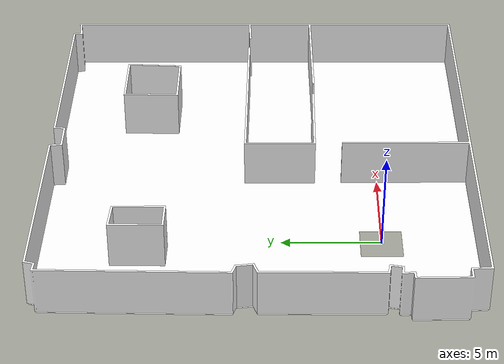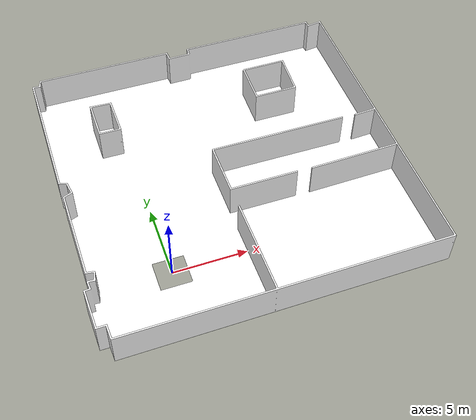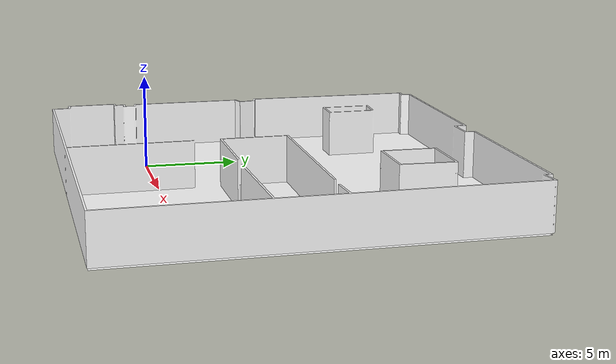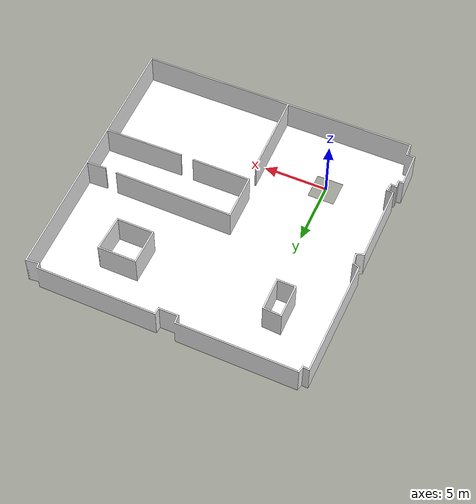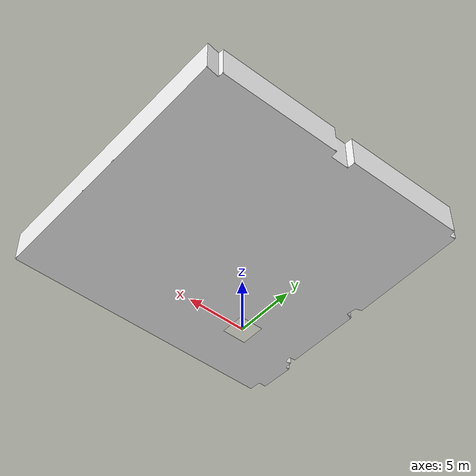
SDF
<?xml version='1.0' encoding='utf-8'?>
<sdf version="1.7">
  <model name="suntech_office_L2">
    <static>true</static>
    <link name="floor_1">
      <visual name="visual">
        <geometry>
          <mesh>
            <uri>model://suntech_office_L2/meshes/floor_1.obj</uri>
          </mesh>
        </geometry>
        <material>
          <diffuse>1.0 1.0 1.0</diffuse>
          <specular>0.1 0.1 0.1</specular>
          <pbr>
            <metal>
              <metalness>0.0</metalness>
              <albedo_map>model://suntech_office_L2/meshes/blue_linoleum.png</albedo_map>
            </metal>
          </pbr>
          <script>
            <uri>model://suntech_office_L2/meshes/</uri>
            <name>floor_1_Diffuse</name>
          </script>
        </material>
      </visual>
      <collision name="collision">
        <geometry>
          <mesh>
            <uri>model://suntech_office_L2/meshes/floor_1.obj</uri>
          </mesh>
        </geometry>
        <surface>
          <contact>
            <collide_bitmask>0x01</collide_bitmask>
          </contact>
        </surface>
      </collision>
    </link>
    <link name="wall_1">
      <visual name="wall_1">
        <geometry>
          <mesh>
            <uri>model://suntech_office_L2/meshes/wall_1.obj</uri>
          </mesh>
        </geometry>
        <transparency>0.0</transparency>
        <material>
          <diffuse>1.0 1.0 1.0</diffuse>
          <specular>0.1 0.1 0.1</specular>
          <pbr>
            <metal>
              <metalness>0.0</metalness>
              <albedo_map>model://suntech_office_L2/meshes/default.png</albedo_map>
            </metal>
          </pbr>
          <script>
            <uri>model://suntech_office_L2/meshes/</uri>
            <name>wall_1_Diffuse</name>
          </script>
        </material>
      </visual>
      <collision name="collision">
        <geometry>
          <mesh>
            <uri>model://suntech_office_L2/meshes/wall_1.obj</uri>
          </mesh>
        </geometry>
        <surface>
          <contact>
            <collide_bitmask>0x01</collide_bitmask>
          </contact>
        </surface>
      </collision>
      <pose>-5.667730117033339 -4.769643272915803 0 0 0 0</pose>
    </link>
  </model>
</sdf>
